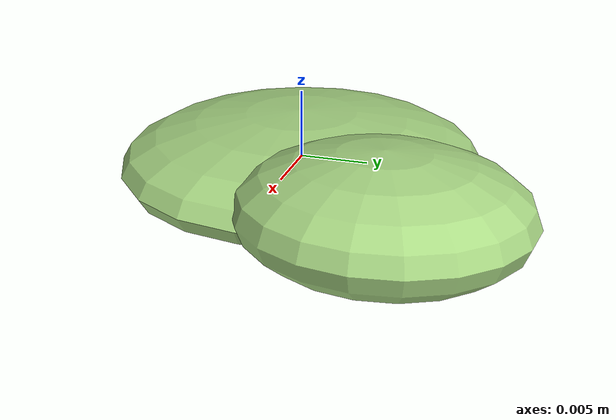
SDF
<?xml version="1.0" ?>
<!-- |    This document was autogenerated by xmacro from data/veggie_template/veggie_base.sdf.xacro  | -->
<!-- |    EDITING THIS FILE BY HAND IS NOT RECOMMENDED                                               | -->
<sdf version="1.8">
	<!-- Parameters -->
	<!-- Base -->
	<!-- Joint 0 -->
	<!-- Link 1 -->
	<!-- Joint 1 -->
	<!-- Link 2 -->
	<!-- Primitives -->
	<!-- All dimensions are half -->
	<!-- Object -->
	<model name="veggie">
		<!-- link0 -->
		<link name="link0">
			<inertial>
				<mass>0.0027265779596955426</mass>
				<inertia>
					<ixx>1.0264375954061938e-07</ixx>
					<ixy>0</ixy>
					<ixz>0</ixz>
					<iyy>1.0997414232061662e-07</iyy>
					<iyz>0</iyz>
					<izz>1.986734184813304e-07</izz>
				</inertia>
			</inertial>
			<visual name="link0_visual">
				<pose>0 0 0 0 0 0</pose>
				<geometry>
					<ellipsoid>
						<radii>0.013743541607010228 0.013245470031893043 0.003575709752096308</radii>
					</ellipsoid>
				</geometry>
				<material>
					<ambient>0.659 0.839 0.514 1</ambient>
					<diffuse>0.659 0.839 0.514 1</diffuse>
					<specular>0 0 0 0</specular>
					<emissive>0 0 0 1</emissive>
				</material>
			</visual>
			<collision name="link0_collision">
				<pose>0 0 0 0 0 0 </pose>
				<geometry>
					<ellipsoid>
						<radii>0.013743541607010228 0.013245470031893043 0.003575709752096308</radii>
					</ellipsoid>
				</geometry>
			</collision>
		</link>
		<!-- link1 -->
		<joint name="joint0" type="fixed">
			<pose relative_to="link0">0.009274049860573239 0.00819272788058246 0.0006389404938587708 0.0 0.0 0.0</pose>
			<parent>link0</parent>
			<child>link1</child>
		</joint>
		<link name="link1">
			<pose relative_to="joint0">0 0 0 0 0 0</pose>
			<inertial>
				<mass>0.0014316499876948021</mass>
				<inertia>
					<ixx>3.135983623131846e-08</ixx>
					<ixy>0</ixy>
					<ixz>0</ixz>
					<iyy>2.689355103700054e-08</iyy>
					<iyz>0</iyz>
					<izz>4.9064466631978917e-08</izz>
				</inertia>
			</inertial>
			<visual name="link1_visual">
				<pose>0 0 0 0 0 0</pose>
				<geometry>
					<ellipsoid>
						<radii>0.008824907306340817 0.00966836970553442 0.004005749873960707</radii>
					</ellipsoid>
				</geometry>
				<material>
					<ambient>0.659 0.839 0.514 1</ambient>
					<diffuse>0.659 0.839 0.514 1</diffuse>
					<specular>0 0 0 0</specular>
					<emissive>0 0 0 1</emissive>
				</material>
			</visual>
			<collision name="link1_collision">
				<pose>0 0 0 0 0 0 </pose>
				<geometry>
					<ellipsoid>
						<radii>0.008824907306340817 0.00966836970553442 0.004005749873960707</radii>
					</ellipsoid>
				</geometry>
			</collision>
		</link>
		<!-- link2 -->
	</model>
</sdf>
